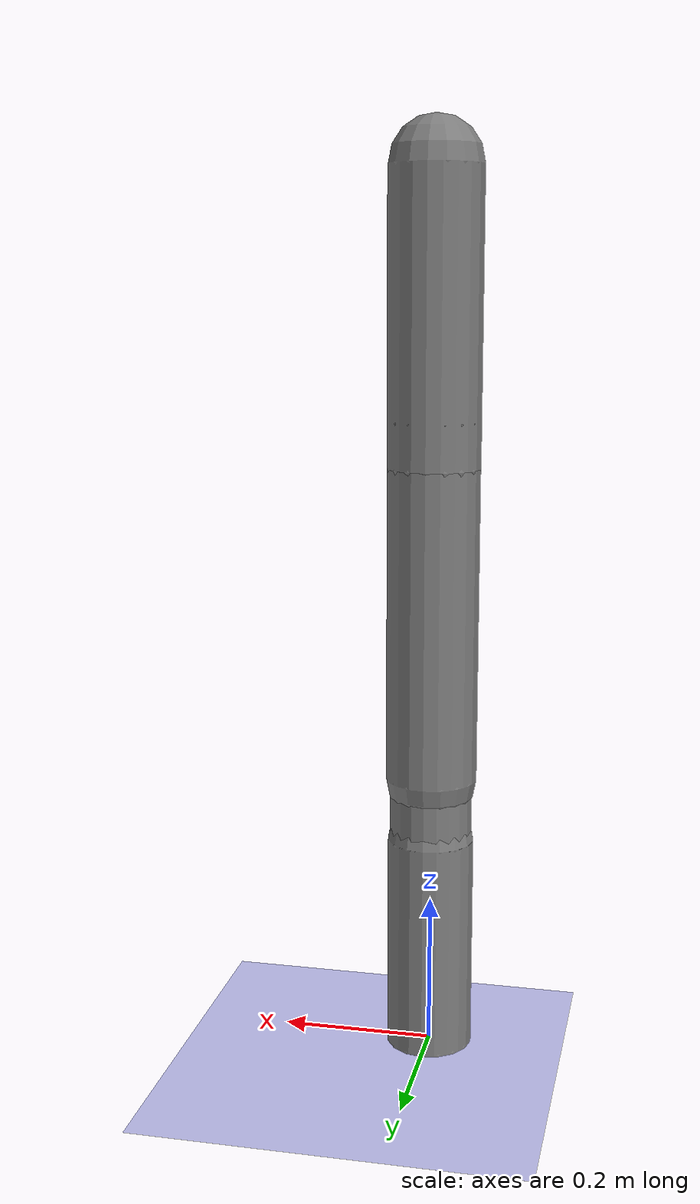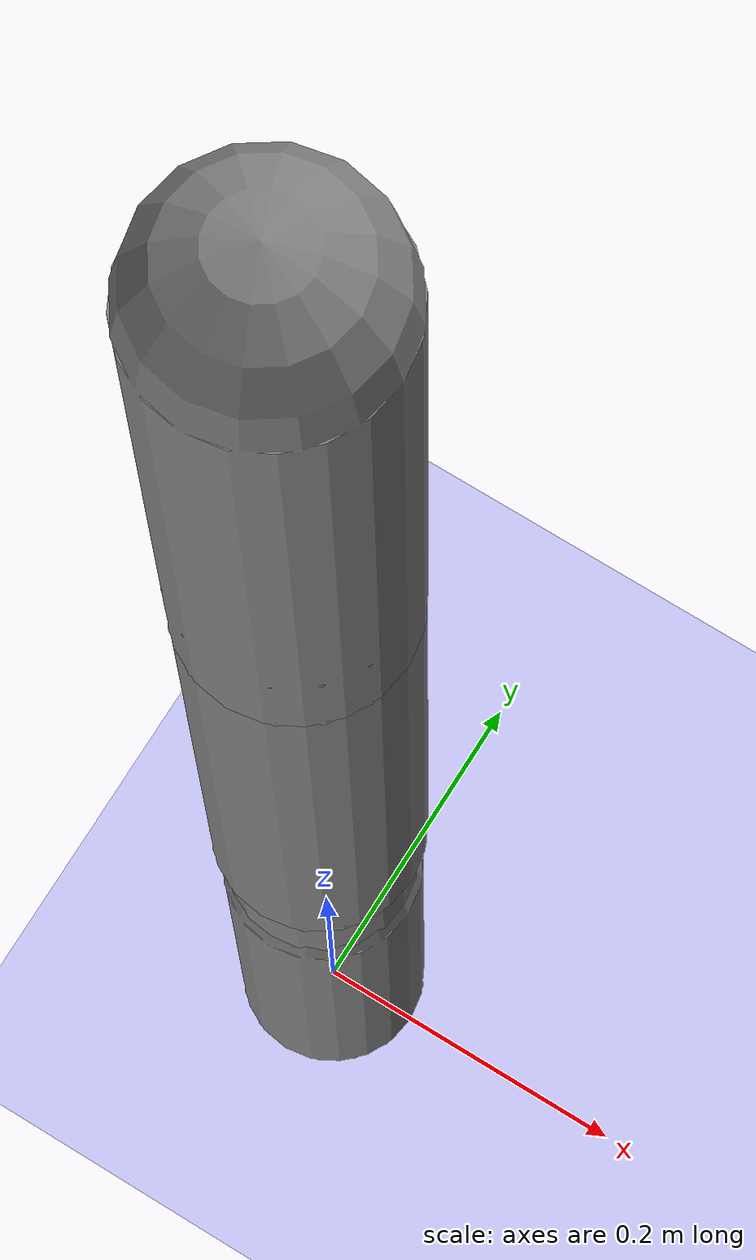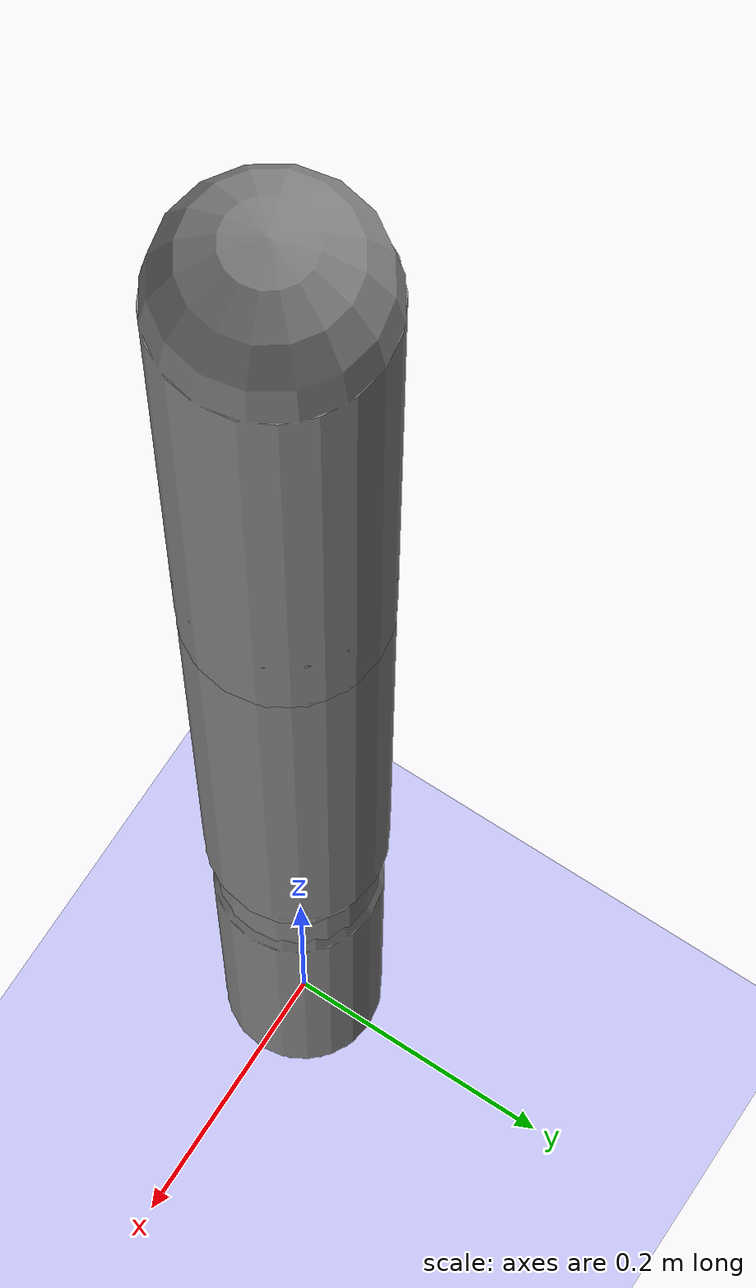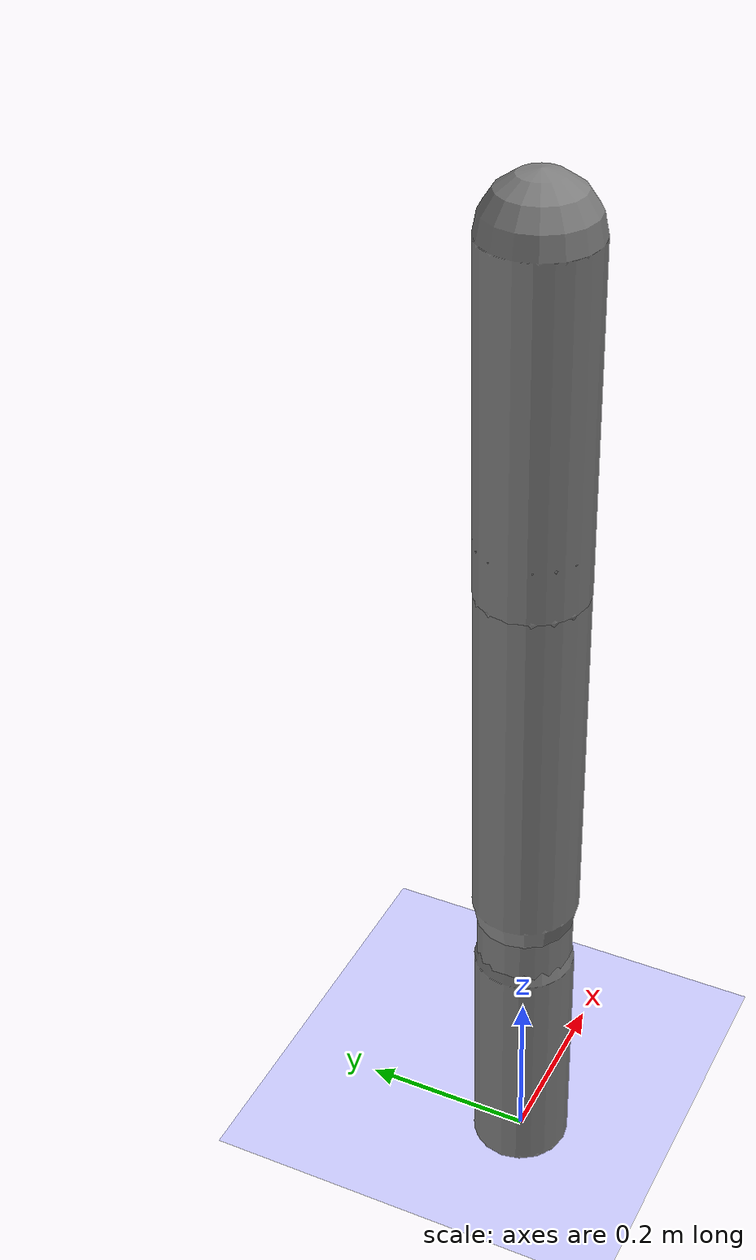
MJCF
<?xml version='1.0' encoding='UTF-8'?>
<mujoco model="robot_model">
  <worldbody>
    <light name="light" pos="0 -3 10" dir="0 0.5 -1" diffuse=".8 .8 .8" specular="0.1 0.1 0.1"/>
    <geom name="floor" type="plane" size="10.0 10.0 0.1" pos="0 0 0" rgba="0.8 0.8 1 1"/>
    <body name="limb0" pos="0 0 0">
      <geom type="capsule" fromto="0 0 0 0 0 0.2874712798641419" size="0.056945445654165955" density="936.4427764749316"/>
      <site type="sphere" size="0.01" name="limb0_site0" pos="0 0 0.23735790627986014"/>
      <site type="sphere" size="0.01" name="limb0_site1" pos="0 0 0.049970608410444275"/>
      <freejoint name="limb0_root"/>
      <body name="limb1" pos="0 0 0.23735790627986014">
        <geom type="capsule" fromto="0 0 0 0 0 0.3600789675341075" size="0.05407429494422454" density="619.3655655626594"/>
        <site type="sphere" size="0.01" name="limb1_site0" pos="0 0 0.14348370626259008"/>
        <body name="limb2" pos="0 0 0.14348370626259008">
          <geom type="capsule" fromto="0 0 0 0 0 0.10906616196231701" size="0.056411451768633665" density="1042.3138697578165"/>
          <site type="sphere" size="0.01" name="limb2_site0" pos="0 0 0.09362712987733504"/>
          <site type="sphere" size="0.01" name="limb2_site1" pos="0 0 0.03619072750447456"/>
          <body name="limb3" pos="0 0 0.09362712987733504">
            <geom type="capsule" fromto="0 0 0 0 0 0.3246346816300574" size="0.027985800535247497" density="877.8764988614424"/>
            <site type="sphere" size="0.01" name="limb3_site0" pos="0 0 0.30592291138675143"/>
            <body name="limb4" pos="0 0 0.30592291138675143">
              <geom type="capsule" fromto="0 0 0 0 0 0.36951162147997846" size="0.06" density="1109.9477975887687"/>
              <joint name="joint_limb3_limb4_0" type="hinge" axis="0 0 1" range="-32.23675465955068 32.23675465955068" damping="5.0"/>
            </body>
            <joint name="joint_limb2_limb3_0" type="hinge" axis="1 0 0" range="-102.98912811609488 102.98912811609488" damping="5.0"/>
          </body>
          <body name="limb5" pos="0 0 0.03619072750447456">
            <geom type="capsule" fromto="0 0 0 0 0 0.3099346421378236" size="0.05865637789649814" density="784.7207053571124"/>
            <joint name="joint_limb2_limb5_0" type="hinge" axis="0 0 1" range="-71.40473736305398 71.40473736305398" damping="5.0"/>
          </body>
          <joint name="joint_limb1_limb2_0" type="hinge" axis="1 0 0" range="-76.76461954822437 76.76461954822437" damping="5.0"/>
        </body>
        <joint name="joint_limb0_limb1_0" type="hinge" axis="0 0 1" range="-104.57342983206668 104.57342983206668" damping="5.0"/>
      </body>
      <body name="limb6" pos="0 0 0.049970608410444275">
        <geom type="capsule" fromto="0 0 0 0 0 0.20848267310478638" size="0.044649670011882046" density="708.121859381018"/>
        <site type="sphere" size="0.01" name="limb6_site0" pos="0 0 0.03808324873440217"/>
        <site type="sphere" size="0.01" name="limb6_site1" pos="0 0 0.13303368912755806"/>
        <body name="limb7" pos="0 0 0.03808324873440217">
          <geom type="capsule" fromto="0 0 0 0 0 0.49506834786402915" size="0.03678532303791788" density="732.350866634508"/>
          <site type="sphere" size="0.01" name="limb7_site0" pos="0 0 0.48864896668293684"/>
          <body name="limb8" pos="0 0 0.48864896668293684">
            <geom type="capsule" fromto="0 0 0 0 0 0.14792642304865472" size="0.05004112571134879" density="415.71080220357624"/>
            <site type="sphere" size="0.01" name="limb8_site0" pos="0 0 0.10533503060879834"/>
            <body name="limb9" pos="0 0 0.10533503060879834">
              <geom type="capsule" fromto="0 0 0 0 0 0.20341471850922796" size="0.027365808771741513" density="1068.3725583502405"/>
              <joint name="joint_limb8_limb9_0" type="hinge" axis="0 0 1" range="-104.59573439320407 104.59573439320407" damping="5.0"/>
            </body>
            <joint name="joint_limb7_limb8_0" type="hinge" axis="0 1 0" range="-101.73901430779064 101.73901430779064" damping="5.0"/>
          </body>
          <joint name="joint_limb6_limb7_0" type="hinge" axis="0 0 1" range="-98.208106043741 98.208106043741" damping="5.0"/>
        </body>
        <body name="limb10" pos="0 0 0.13303368912755806">
          <geom type="capsule" fromto="0 0 0 0 0 0.23103065752325797" size="0.04901004816607724" density="644.8409758258897"/>
          <site type="sphere" size="0.01" name="limb10_site0" pos="0 0 0.18815467307351175"/>
          <body name="limb11" pos="0 0 0.18815467307351175">
            <geom type="capsule" fromto="0 0 0 0 0 0.4676759956951593" size="0.05966738873335552" density="631.8729198528299"/>
            <joint name="joint_limb10_limb11_0" type="hinge" axis="1 0 0" range="-116.11182435512906 116.11182435512906" damping="5.0"/>
          </body>
          <joint name="joint_limb6_limb10_0" type="hinge" axis="1 0 0" range="-53.30102500458968 53.30102500458968" damping="5.0"/>
        </body>
        <joint name="joint_limb0_limb6_0" type="hinge" axis="0 0 1" range="-96.21716630603876 96.21716630603876" damping="5.0"/>
      </body>
    </body>
  </worldbody>
  <actuator>
    <position name="position_actuator_joint_limb0_limb1_0" joint="joint_limb0_limb1_0" gear="1.3405511740366276" inheritrange="1" kp="10.0"/>
    <position name="position_actuator_joint_limb1_limb2_0" joint="joint_limb1_limb2_0" gear="2.0" inheritrange="1" kp="10.0"/>
    <position name="position_actuator_joint_limb2_limb3_0" joint="joint_limb2_limb3_0" gear="1.285844846340357" inheritrange="1" kp="10.0"/>
    <position name="position_actuator_joint_limb3_limb4_0" joint="joint_limb3_limb4_0" gear="0.6866428973515241" inheritrange="1" kp="10.0"/>
    <position name="position_actuator_joint_limb2_limb5_0" joint="joint_limb2_limb5_0" gear="1.1987147143813428" inheritrange="1" kp="10.0"/>
    <position name="position_actuator_joint_limb0_limb6_0" joint="joint_limb0_limb6_0" gear="1.7817465554683207" inheritrange="1" kp="10.0"/>
    <position name="position_actuator_joint_limb6_limb7_0" joint="joint_limb6_limb7_0" gear="0.9075785035297382" inheritrange="1" kp="10.0"/>
    <position name="position_actuator_joint_limb7_limb8_0" joint="joint_limb7_limb8_0" gear="0.6855578824392156" inheritrange="1" kp="10.0"/>
    <position name="position_actuator_joint_limb8_limb9_0" joint="joint_limb8_limb9_0" gear="0.7049780118299882" inheritrange="1" kp="10.0"/>
    <position name="position_actuator_joint_limb6_limb10_0" joint="joint_limb6_limb10_0" gear="0.6968377142661952" inheritrange="1" kp="10.0"/>
    <position name="position_actuator_joint_limb10_limb11_0" joint="joint_limb10_limb11_0" gear="1.6176498600222116" inheritrange="1" kp="10.0"/>
  </actuator>
</mujoco>
